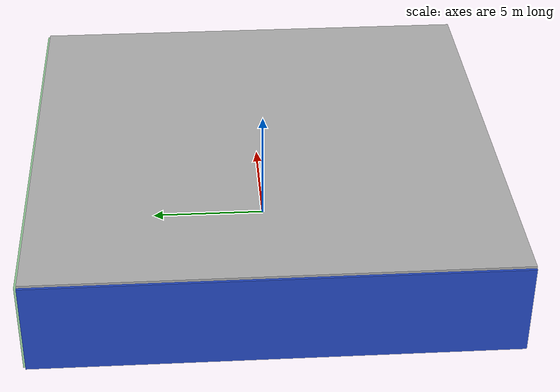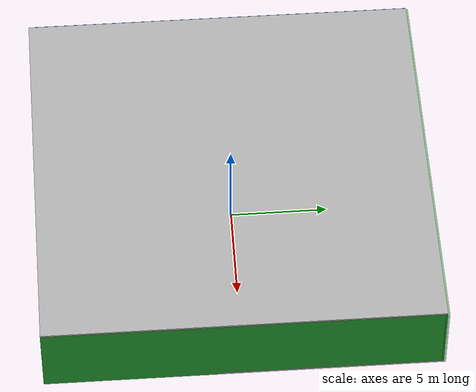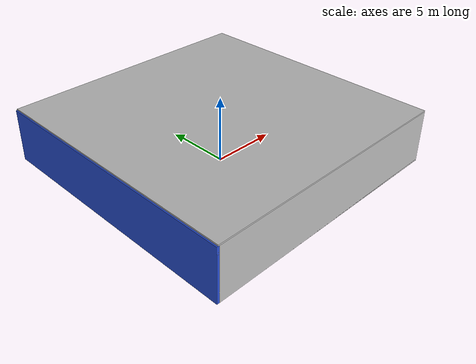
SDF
<sdf version="1.4">
 <world name="default">
  <physics type="ode">
   <max_step_size>0.001</max_step_size>
   <real_time_factor>1</real_time_factor>
   <real_time_update_rate>1000</real_time_update_rate>
   <gravity>0 0 -9.8</gravity>
  </physics>
  <scene><ambient>0.4 0.4 0.4 1</ambient><background>0.7 0.7 0.7 1</background><shadows>1</shadows></scene>
  <model name="Surrounding">
   <static>1</static>
   <link name="Ceiling">
    <collision name="Ceiling_Collision"><geometry><box><size>20 20 0.1</size></box></geometry></collision>
    <visual name="Ceiling_Visual">
     <geometry><box><size>20 20 0.1</size></box></geometry>
     <material>
      <script><uri>file://media/materials/scripts/gazebo.material</uri><name>Gazebo/PioneerBody</name></script>
     </material>
    </visual>
    <pose>0 0 4.05 0 0 0</pose>
   </link>
   <link name="Wall_South">
    <collision name="Wall_South_Collision">
     <geometry><box><size>20 0 4</size></box></geometry>
     <pose>0 0 2 0 -0 0</pose>
    </collision>
    <visual name="Wall_South_Visual">
     <pose>0 0 2 0 -0 0</pose>
     <geometry><box><size>20 0 4</size></box></geometry>
     <material>
      <script><uri>file://media/materials/scripts/gazebo.material</uri><name>Gazebo/Pioneer2Body</name></script>
     </material>
    </visual>
    <velocity_decay><linear>0</linear><angular>0</angular></velocity_decay>
    <pose>0 -10 0 0 -0 0</pose>
   </link>
   <link name="Wall_East">
    <collision name="Wall_21_Collision">
     <geometry><box><size>20 0 4</size></box></geometry>
     <pose>0 0 2 0 -0 0</pose>
    </collision>
    <visual name="Wall_21_Visual">
     <pose>0 0 2 0 -0 0</pose>
     <geometry><box><size>20 0 4</size></box></geometry>
     <material>
      <script><uri>file://media/materials/scripts/gazebo.material</uri><name>Gazebo/Green</name></script>
     </material>
    </visual>
    <velocity_decay><linear>0</linear><angular>0</angular></velocity_decay>
    <pose>10 0 0 0 -0 1.5708</pose>
   </link>
   <link name="Wall_North">
    <collision name="Wall_22_Collision">
     <geometry><box><size>20 0.2 4</size></box></geometry>
     <pose>0 0 2 0 -0 0</pose>
    </collision>
    <visual name="Wall_22_Visual">
     <pose>0 0 2 0 -0 0</pose>
     <geometry><box><size>20 0.2 4</size></box></geometry>
     <material>
      <script><uri>file://media/materials/scripts/gazebo.material</uri><name>Gazebo/GreenTransparent</name></script>
     </material>
    </visual>
    <velocity_decay><linear>0</linear><angular>0</angular></velocity_decay>
    <pose>0 10 0 0 -0 0</pose>
   </link>
   <link name="Wall_West">
    <collision name="Wall_23_Collision">
     <geometry><box><size>20 0.2 4</size></box></geometry>
     <pose>0 0 2 0 -0 0</pose>
    </collision>
    <visual name="Wall_23_Visual">
     <pose>0 0 2 0 -0 0</pose>
     <geometry><box><size>20 0.2 4</size></box></geometry>
     <material>
      <script><uri>file://media/materials/scripts/gazebo.material</uri><name>Gazebo/BlueLaser</name></script>
     </material>
    </visual>
    <velocity_decay><linear>0</linear><angular>0</angular></velocity_decay>
    <pose>-10 0 0 0 0 -1.5708</pose>
   </link>
   <link name="Ground_link">
    <collision name="collision">
     <pose>0 0 .05 0 -0 0</pose>
     <geometry><box><size>20 20 0.1</size></box></geometry>
    </collision>
    <visual name="visual">
     <pose>0 0 .05 0 -0 0</pose>
     <geometry><box><size>20 20 0.1</size></box></geometry>
     <material>
      <script><uri>file://media/materials/scripts/gazebo.material</uri><name>Gazebo/LightOn</name></script>
     </material>
    </visual>
   </link>
   <static>1</static>
  </model>
  <spherical_coordinates>
   <surface_model>EARTH_WGS84</surface_model>
   <latitude_deg>0</latitude_deg>
   <longitude_deg>0</longitude_deg>
   <elevation>0</elevation>
   <heading_deg>0</heading_deg>
  </spherical_coordinates>
  <light name="lightball_0" type="diffuse">
   <diffuse>0.8 0.8 0.8 1</diffuse>
   <specular>0.2 0.2 0.2 1</specular>
   <attenuation>
    <range>100</range>
    <constant>0.7</constant>
    <linear>0.01</linear>
    <quadratic>0.001</quadratic>
   </attenuation>
   <direction>-0.5 0.1 -0.9</direction>
   <pose>4.51290496015 -2.9010369135 0.669538444582 0 0 0</pose>
  </light>
  <light name="lightball_1" type="diffuse">
   <diffuse>0.8 0.8 0.8 1</diffuse>
   <specular>0.2 0.2 0.2 1</specular>
   <attenuation>
    <range>100</range>
    <constant>0.7</constant>
    <linear>0.01</linear>
    <quadratic>0.001</quadratic>
   </attenuation>
   <direction>-0.5 0.1 -0.9</direction>
   <pose>0.342793005861 1.81613599295 0.834196955954 0 0 0</pose>
  </light>
  <light name="lightball_2" type="diffuse">
   <diffuse>0.8 0.8 0.8 1</diffuse>
   <specular>0.2 0.2 0.2 1</specular>
   <attenuation>
    <range>100</range>
    <constant>0.7</constant>
    <linear>0.01</linear>
    <quadratic>0.001</quadratic>
   </attenuation>
   <direction>-0.5 0.1 -0.9</direction>
   <pose>3.96010136375 -1.11399545224 0.558968593573 0 0 0</pose>
  </light>
  <light name="lightball_3" type="diffuse">
   <diffuse>0.8 0.8 0.8 1</diffuse>
   <specular>0.2 0.2 0.2 1</specular>
   <attenuation>
    <range>100</range>
    <constant>0.7</constant>
    <linear>0.01</linear>
    <quadratic>0.001</quadratic>
   </attenuation>
   <direction>-0.5 0.1 -0.9</direction>
   <pose>-8.45268194185 -4.31658314894 2.22365381294 0 0 0</pose>
  </light>
  <light name="lightball_4" type="diffuse">
   <diffuse>0.8 0.8 0.8 1</diffuse>
   <specular>0.2 0.2 0.2 1</specular>
   <attenuation>
    <range>100</range>
    <constant>0.7</constant>
    <linear>0.01</linear>
    <quadratic>0.001</quadratic>
   </attenuation>
   <direction>-0.5 0.1 -0.9</direction>
   <pose>3.71249390915 -8.3249527977 1.1826745203 0 0 0</pose>
  </light>
  <light name="lightball_5" type="diffuse">
   <diffuse>0.8 0.8 0.8 1</diffuse>
   <specular>0.2 0.2 0.2 1</specular>
   <attenuation>
    <range>100</range>
    <constant>0.7</constant>
    <linear>0.01</linear>
    <quadratic>0.001</quadratic>
   </attenuation>
   <direction>-0.5 0.1 -0.9</direction>
   <pose>-0.656846444431 -7.00966808221 2.97336349714 0 0 0</pose>
  </light>
  <light name="lightball_6" type="diffuse">
   <diffuse>0.8 0.8 0.8 1</diffuse>
   <specular>0.2 0.2 0.2 1</specular>
   <attenuation>
    <range>100</range>
    <constant>0.7</constant>
    <linear>0.01</linear>
    <quadratic>0.001</quadratic>
   </attenuation>
   <direction>-0.5 0.1 -0.9</direction>
   <pose>-8.74202502934 1.81431312353 0.914709837284 0 0 0</pose>
  </light>
  <light name="lightball_7" type="diffuse">
   <diffuse>0.8 0.8 0.8 1</diffuse>
   <specular>0.2 0.2 0.2 1</specular>
   <attenuation>
    <range>100</range>
    <constant>0.7</constant>
    <linear>0.01</linear>
    <quadratic>0.001</quadratic>
   </attenuation>
   <direction>-0.5 0.1 -0.9</direction>
   <pose>-6.18339657439 2.322565506 1.7131138707 0 0 0</pose>
  </light>
  <light name="lightball_8" type="diffuse">
   <diffuse>0.8 0.8 0.8 1</diffuse>
   <specular>0.2 0.2 0.2 1</specular>
   <attenuation>
    <range>100</range>
    <constant>0.7</constant>
    <linear>0.01</linear>
    <quadratic>0.001</quadratic>
   </attenuation>
   <direction>-0.5 0.1 -0.9</direction>
   <pose>4.1187883255 -9.31215835259 0.900989809217 0 0 0</pose>
  </light>
  <light name="lightball_9" type="diffuse">
   <diffuse>0.8 0.8 0.8 1</diffuse>
   <specular>0.2 0.2 0.2 1</specular>
   <attenuation>
    <range>100</range>
    <constant>0.7</constant>
    <linear>0.01</linear>
    <quadratic>0.001</quadratic>
   </attenuation>
   <direction>-0.5 0.1 -0.9</direction>
   <pose>-9.22194860726 -4.04057279151 2.45364622881 0 0 0</pose>
  </light>
  <include>
   <uri>model://robocup_3Dsim_goal</uri>
   <pose>-3.90130720999 -0.787764691795 0 0 0 0.630187915754</pose>
  </include>
  <include><uri>model://table</uri><pose>2.11494225517 1.30137014122 0 0 0 2.29053192252</pose></include>
 </world>
</sdf>

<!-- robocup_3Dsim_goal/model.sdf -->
<sdf version="1.5">
  <model name="robocup_3d_goal">
    <static>true</static>
    <link name="left_post">
      <pose>0 1.05 0.45 0 0 0</pose>
      <collision name="collision">
        <geometry>
          <cylinder>
            <radius>0.05</radius>
            <length>0.9</length>
          </cylinder>
        </geometry>
      </collision>
      <visual name="visual">
        <geometry>
          <cylinder>
            <radius>0.05</radius>
            <length>0.9</length>
          </cylinder>
        </geometry>
        <material>
          <script>
            <uri>file://media/materials/scripts/gazebo.material</uri>
            <name>Gazebo/ZincYellow</name>
          </script>
        </material>
      </visual>
    </link>
    <link name="left_support_horiz_lower">
      <pose>0.30 1.05 0.01 0 0 0</pose>
      <collision name="collision">
        <geometry>
          <box>
            <size>0.50 0.02 0.02</size>
          </box>
        </geometry>
      </collision>
      <visual name="visual">
        <geometry>
          <box>
            <size>0.50 0.02 0.02</size>
          </box>
        </geometry>
        <material>
          <script>
            <uri>file://media/materials/scripts/gazebo.material</uri>
            <name>Gazebo/White</name>
          </script>
        </material>
      </visual>
    </link>
    <link name="left_support_horiz_upper">
      <pose>0.30 1.05 0.79 0 0 0</pose>
      <collision name="collision">
        <geometry>
          <box>
            <size>0.50 0.02 0.02</size>
          </box>
        </geometry>
      </collision>
      <visual name="visual">
        <geometry>
          <box>
            <size>0.50 0.02 0.02</size>
          </box>
        </geometry>
        <material>
          <script>
            <uri>file://media/materials/scripts/gazebo.material</uri>
            <name>Gazebo/White</name>
          </script>
        </material>
      </visual>
    </link>
    <link name="left_support_vertical">
      <pose>0.56 1.05 0.4 0 1.5708 0</pose>
      <collision name="collision">
        <geometry>
          <box>
            <size>0.80 0.02 0.02</size>
          </box>
        </geometry>
      </collision>
      <visual name="visual">
        <geometry>
          <box>
            <size>0.80 0.02 0.02</size>
          </box>
        </geometry>
        <material>
          <script>
            <uri>file://media/materials/scripts/gazebo.material</uri>
            <name>Gazebo/White</name>
          </script>
        </material>
      </visual>
    </link>
    <link name="right_support_horiz_lower">
      <pose>0.30 -1.05 0.01 0 0 0</pose>
      <collision name="collision">
        <geometry>
          <box>
            <size>0.50 0.02 0.02</size>
          </box>
        </geometry>
      </collision>
      <visual name="visual">
        <geometry>
          <box>
            <size>0.50 0.02 0.02</size>
          </box>
        </geometry>
        <material>
          <script>
            <uri>file://media/materials/scripts/gazebo.material</uri>
            <name>Gazebo/White</name>
          </script>
        </material>
      </visual>
    </link>
    <link name="right_support_horiz_upper">
      <pose>0.30 -1.05 0.79 0 0 0</pose>
      <collision name="collision">
        <geometry>
          <box>
            <size>0.50 0.02 0.02</size>
          </box>
        </geometry>
      </collision>
      <visual name="visual">
        <geometry>
          <box>
            <size>0.50 0.02 0.02</size>
          </box>
        </geometry>
        <material>
          <script>
            <uri>file://media/materials/scripts/gazebo.material</uri>
            <name>Gazebo/White</name>
          </script>
        </material>
      </visual>
    </link>
    <link name="right_support_vertical">
      <pose>0.56 -1.05 0.4 0 1.5708 0</pose>
      <collision name="collision">
        <geometry>
          <box>
            <size>0.80 0.02 0.02</size>
          </box>
        </geometry>
      </collision>
      <visual name="visual">
        <geometry>
          <box>
            <size>0.80 0.02 0.02</size>
          </box>
        </geometry>
        <material>
          <script>
            <uri>file://media/materials/scripts/gazebo.material</uri>
            <name>Gazebo/White</name>
          </script>
        </material>
      </visual>
    </link>
    <link name="center_support_horiz_lower">
      <pose>0.56 0 0.01 0 1.5708 0</pose>
      <collision name="collision">
        <geometry>
          <box>
            <size>0.02 2.08 0.02</size>
          </box>
        </geometry>
      </collision>
      <visual name="visual">
        <geometry>
          <box>
            <size>0.02 2.08 0.02</size>
          </box>
        </geometry>
        <material>
          <script>
            <uri>file://media/materials/scripts/gazebo.material</uri>
            <name>Gazebo/White</name>
          </script>
        </material>
      </visual>
    </link>
    <link name="center_support_horiz_upper">
      <pose>0.56 0 0.79 0 1.5708 0</pose>
      <collision name="collision">
        <geometry>
          <box>
            <size>0.02 2.08 0.02</size>
          </box>
        </geometry>
      </collision>
      <visual name="visual">
        <geometry>
          <box>
            <size>0.02 2.08 0.02</size>
          </box>
        </geometry>
        <material>
          <script>
            <uri>file://media/materials/scripts/gazebo.material</uri>
            <name>Gazebo/White</name>
          </script>
        </material>
      </visual>
    </link>
    <link name="right_post">
      <pose>0 -1.05 0.45 0 0 0</pose>
      <collision name="collision">
        <geometry>
          <cylinder>
            <radius>0.05</radius>
            <length>0.9</length>
          </cylinder>
        </geometry>
      </collision>
      <visual name="visual">
        <geometry>
          <cylinder>
            <radius>0.05</radius>
            <length>0.9</length>
          </cylinder>
        </geometry>
        <material>
          <script>
            <uri>file://media/materials/scripts/gazebo.material</uri>
            <name>Gazebo/ZincYellow</name>
          </script>
        </material>
      </visual>
    </link>
    <link name="crossbar">
      <pose>0 0 0.85 1.57 1.57 0</pose>
      <collision name="collision">
        <geometry>
          <cylinder>
            <radius>0.05</radius>
            <length>2.0</length>
          </cylinder>
        </geometry>
      </collision>
      <visual name="visual">
        <geometry>
          <cylinder>
            <radius>0.05</radius>
            <length>2.0</length>
          </cylinder>
        </geometry>
        <material>
          <script>
            <uri>file://media/materials/scripts/gazebo.material</uri>
            <name>Gazebo/ZincYellow</name>
          </script>
        </material>
      </visual>
    </link>
    <link name="center_net">
      <pose>0.56 0 0.40 0 0 0</pose>
      <collision name="collision">
        <geometry>
          <box>
            <size>0.01 2.1 0.80</size>
          </box>
        </geometry>
      </collision>
      <visual name="visual">
        <geometry>
          <box>
            <size>0.01 2.1 0.80</size>
          </box>
        </geometry>
        <material>
          <script>
            <uri>model://../model_source/models/robocup09_spl_field/materials/scripts/</uri>
            <uri>model://../model_source/models/robocup09_spl_field/materials/textures/</uri>
            <name>RoboCup/Net</name>
          </script>
        </material>
      </visual>
    </link>
    <link name="left_net">
      <pose>0.30 1.05 0.40 0 0 0</pose>
      <collision name="collision">
        <geometry>
          <box>
            <size>0.50 0.01 0.76</size>
          </box>
        </geometry>
      </collision>
      <visual name="visual">
        <geometry>
          <box>
            <size>0.50 0.01 0.76</size>
          </box>
        </geometry>
        <material>
          <script>
            <uri>model://../model_source/models/robocup09_spl_field/materials/scripts/</uri>
            <uri>model://../model_source/models/robocup09_spl_field/materials/textures/</uri>
            <name>RoboCup/Net</name>
          </script>
        </material>
      </visual>
    </link>
    <link name="right_net">
      <pose>0.30 -1.05 0.40 0 0 0</pose>
      <collision name="collision">
        <geometry>
          <box>
            <size>0.50 0.01 0.76</size>
          </box>
        </geometry>
      </collision>
      <visual name="visual">
        <geometry>
          <box>
            <size>0.50 0.01 0.76</size>
          </box>
        </geometry>
        <material>
          <script>
            <uri>model://../model_source/models/robocup09_spl_field/materials/scripts/</uri>
            <uri>model://../model_source/models/robocup09_spl_field/materials/textures/</uri>
            <name>RoboCup/Net</name>
          </script>
        </material>
      </visual>
    </link>
  </model>
</sdf>

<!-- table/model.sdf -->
<sdf version="1.5">
  <model name="table">
    <static>true</static>
    <link name="link">
      <collision name="surface">
        <pose>0 0 1.0 0 0 0</pose>
        <geometry>
          <box>
            <size>1.5 0.8 0.03</size>
          </box>
        </geometry>
        <surface>
          <friction>
            <ode>
              <mu>0.6</mu>
              <mu2>0.6</mu2>
            </ode>
          </friction>
        </surface>
      </collision>
      <visual name="visual1">
        <pose>0 0 1.0 0 0 0</pose>
        <geometry>
          <box>
            <size>1.5 0.8 0.03</size>
          </box>
        </geometry>
        <material>
          <script>
            <uri>model://media/materials/scripts/gazebo.material</uri>
            <name>Gazebo/Wood</name>
          </script>
        </material>
      </visual>
      <collision name="front_left_leg">
        <pose>0.68 0.38 0.5 0 0 0</pose>
        <geometry>
          <cylinder>
            <radius>0.02</radius>
            <length>1.0</length>
          </cylinder>
        </geometry>
      </collision>
      <visual name="front_left_leg">
        <pose>0.68 0.38 0.5 0 0 0</pose>
        <geometry>
          <cylinder>
            <radius>0.02</radius>
            <length>1.0</length>
          </cylinder>
        </geometry>
        <material>
          <script>
            <uri>model://media/materials/scripts/gazebo.material</uri>
            <name>Gazebo/Grey</name>
          </script>
        </material>
      </visual>
      <collision name="front_right_leg">
        <pose>0.68 -0.38 0.5 0 0 0</pose>
        <geometry>
          <cylinder>
            <radius>0.02</radius>
            <length>1.0</length>
          </cylinder>
        </geometry>
      </collision>
      <visual name="front_right_leg">
        <pose>0.68 -0.38 0.5 0 0 0</pose>
        <geometry>
          <cylinder>
            <radius>0.02</radius>
            <length>1.0</length>
          </cylinder>
        </geometry>
        <material>
          <script>
            <uri>model://media/materials/scripts/gazebo.material</uri>
            <name>Gazebo/Grey</name>
          </script>
        </material>
      </visual>
      <collision name="back_right_leg">
        <pose>-0.68 -0.38 0.5 0 0 0</pose>
        <geometry>
          <cylinder>
            <radius>0.02</radius>
            <length>1.0</length>
          </cylinder>
        </geometry>
      </collision>
      <visual name="back_right_leg">
        <pose>-0.68 -0.38 0.5 0 0 0</pose>
        <geometry>
          <cylinder>
            <radius>0.02</radius>
            <length>1.0</length>
          </cylinder>
        </geometry>
        <material>
          <script>
            <uri>model://media/materials/scripts/gazebo.material</uri>
            <name>Gazebo/Grey</name>
          </script>
        </material>
      </visual>
      <collision name="back_left_leg">
        <pose>-0.68 0.38 0.5 0 0 0</pose>
        <geometry>
          <cylinder>
            <radius>0.02</radius>
            <length>1.0</length>
          </cylinder>
        </geometry>
      </collision>
      <visual name="back_left_leg">
        <pose>-0.68 0.38 0.5 0 0 0</pose>
        <geometry>
          <cylinder>
            <radius>0.02</radius>
            <length>1.0</length>
          </cylinder>
        </geometry>
        <material>
          <script>
            <uri>model://media/materials/scripts/gazebo.material</uri>
            <name>Gazebo/Grey</name>
          </script>
        </material>
      </visual>
    </link>
  </model>
</sdf>
